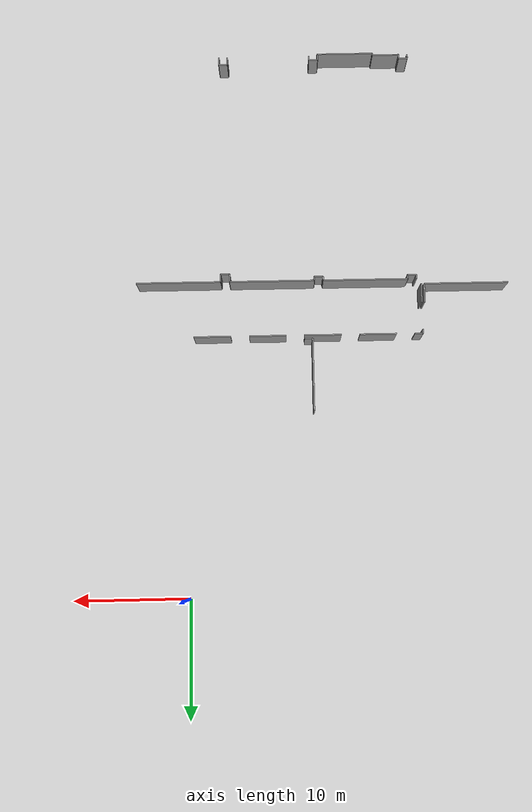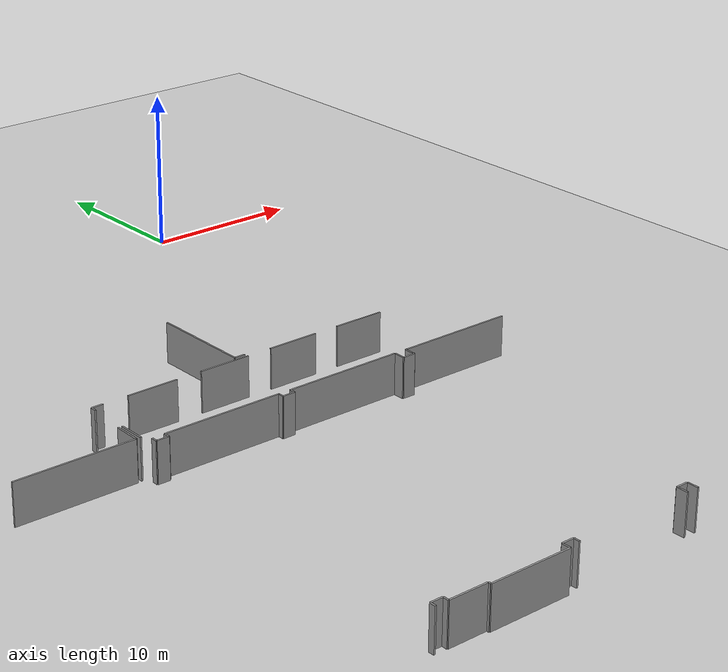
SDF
<sdf version="1.6">
 <world name="default">
  <model name="ground_plane">
   <static>1</static>
   <link name="link">
    <collision name="collision">
     <geometry><plane><normal>0 0 1</normal><size>100 100</size></plane></geometry>
     <surface><friction><ode><mu>100</mu><mu2>50</mu2></ode></friction></surface>
    </collision>
    <visual name="visual">
     <cast_shadows>0</cast_shadows>
     <geometry><plane><normal>0 0 1</normal><size>100 100</size></plane></geometry>
     <material>
      <script><uri>file://media/materials/scripts/gazebo.material</uri><name>Gazebo/Grey</name></script>
     </material>
    </visual>
   </link>
  </model>
  <model name="50025631">
   <static>1</static>
   <link name="Wall_405">
    <collision name="Wall_405_Collision">
     <geometry><box><size>0.700945558921 0.1 2.5</size></box></geometry>
     <pose>0.350472779461 0 1.25 0 0 0</pose>
    </collision>
    <visual name="Wall_405_Visual">
     <pose>0.350472779461 0 1.25 0 0 0</pose>
     <geometry><box><size>0.700945558921 0.1 2.5</size></box></geometry>
     <material>
      <script><uri>file://media/materials/scripts/gazebo.material</uri><name>Gazebo/Grey</name></script>
      <ambient>1 1 1 1</ambient>
     </material>
    </visual>
    <pose>53.0224228915 -96.9353857487 0 0 0 1.57079632679</pose>
   </link>
   <link name="Wall_406">
    <collision name="Wall_406_Collision">
     <geometry><box><size>0.751366900993 0.1 2.5</size></box></geometry>
     <pose>0.375683450496 0 1.25 0 0 0</pose>
    </collision>
    <visual name="Wall_406_Visual">
     <pose>0.375683450496 0 1.25 0 0 0</pose>
     <geometry><box><size>0.751366900993 0.1 2.5</size></box></geometry>
     <material>
      <script><uri>file://media/materials/scripts/gazebo.material</uri><name>Gazebo/Grey</name></script>
      <ambient>1 1 1 1</ambient>
     </material>
    </visual>
    <pose>53.0224228915 -96.2344401897 0 0 0 3.14159265359</pose>
   </link>
   <link name="Wall_407">
    <collision name="Wall_407_Collision">
     <geometry><box><size>0.700945558921 0.1 2.5</size></box></geometry>
     <pose>0.350472779461 0 1.25 0 0 0</pose>
    </collision>
    <visual name="Wall_407_Visual">
     <pose>0.350472779461 0 1.25 0 0 0</pose>
     <geometry><box><size>0.700945558921 0.1 2.5</size></box></geometry>
     <material>
      <script><uri>file://media/materials/scripts/gazebo.material</uri><name>Gazebo/Grey</name></script>
      <ambient>1 1 1 1</ambient>
     </material>
    </visual>
    <pose>52.2710559906 -96.2344401897 0 0 0 -1.57079632679</pose>
   </link>
   <link name="Wall_408">
    <collision name="Wall_408_Collision">
     <geometry><box><size>0.375048420999 0.1 2.5</size></box></geometry>
     <pose>0.1875242105 0 1.25 0 0 0</pose>
    </collision>
    <visual name="Wall_408_Visual">
     <pose>0.1875242105 0 1.25 0 0 0</pose>
     <geometry><box><size>0.375048420999 0.1 2.5</size></box></geometry>
     <material>
      <script><uri>file://media/materials/scripts/gazebo.material</uri><name>Gazebo/Grey</name></script>
      <ambient>1 1 1 1</ambient>
     </material>
    </visual>
    <pose>44.816317718 -96.9353857487 0 0 0 1.57079632679</pose>
   </link>
   <link name="Wall_409">
    <collision name="Wall_409_Collision">
     <geometry><box><size>0.768766709214 0.1 2.5</size></box></geometry>
     <pose>0.384383354607 0 1.25 0 0 0</pose>
    </collision>
    <visual name="Wall_409_Visual">
     <pose>0.384383354607 0 1.25 0 0 0</pose>
     <geometry><box><size>0.768766709214 0.1 2.5</size></box></geometry>
     <material>
      <script><uri>file://media/materials/scripts/gazebo.material</uri><name>Gazebo/Grey</name></script>
      <ambient>1 1 1 1</ambient>
     </material>
    </visual>
    <pose>44.816317718 -96.5603373277 0 0 0 3.14159265359</pose>
   </link>
   <link name="Wall_410">
    <collision name="Wall_410_Collision">
     <geometry><box><size>0.539267048954 0.1 2.5</size></box></geometry>
     <pose>0.269633524477 0 1.25 0 0 0</pose>
    </collision>
    <visual name="Wall_410_Visual">
     <pose>0.269633524477 0 1.25 0 0 0</pose>
     <geometry><box><size>0.539267048954 0.1 2.5</size></box></geometry>
     <material>
      <script><uri>file://media/materials/scripts/gazebo.material</uri><name>Gazebo/Grey</name></script>
      <ambient>1 1 1 1</ambient>
     </material>
    </visual>
    <pose>44.0475510087 -96.5603373277 0 0 0 -1.57079632679</pose>
   </link>
   <link name="Wall_411">
    <collision name="Wall_411_Collision">
     <geometry><box><size>5.02143224553 0.1 2.5</size></box></geometry>
     <pose>2.51071612276 0 1.25 0 0 0</pose>
    </collision>
    <visual name="Wall_411_Visual">
     <pose>2.51071612276 0 1.25 0 0 0</pose>
     <geometry><box><size>5.02143224553 0.1 2.5</size></box></geometry>
     <material>
      <script><uri>file://media/materials/scripts/gazebo.material</uri><name>Gazebo/Grey</name></script>
      <ambient>1 1 1 1</ambient>
     </material>
    </visual>
    <pose>44.0475510087 -97.0996043766 0 0 0 3.14159265359</pose>
   </link>
   <link name="Wall_412">
    <collision name="Wall_412_Collision">
     <geometry><box><size>0.170187905228 0.1 2.5</size></box></geometry>
     <pose>0.0850939526141 0 1.25 0 0 0</pose>
    </collision>
    <visual name="Wall_412_Visual">
     <pose>0.0850939526141 0 1.25 0 0 0</pose>
     <geometry><box><size>0.170187905228 0.1 2.5</size></box></geometry>
     <material>
      <script><uri>file://media/materials/scripts/gazebo.material</uri><name>Gazebo/Grey</name></script>
      <ambient>1 1 1 1</ambient>
     </material>
    </visual>
    <pose>39.0261187632 -97.0996043766 0 0 0 1.57079632679</pose>
   </link>
   <link name="Wall_413">
    <collision name="Wall_413_Collision">
     <geometry><box><size>2.39456922774 0.1 2.5</size></box></geometry>
     <pose>1.19728461387 0 1.25 0 0 0</pose>
    </collision>
    <visual name="Wall_413_Visual">
     <pose>1.19728461387 0 1.25 0 0 0</pose>
     <geometry><box><size>2.39456922774 0.1 2.5</size></box></geometry>
     <material>
      <script><uri>file://media/materials/scripts/gazebo.material</uri><name>Gazebo/Grey</name></script>
      <ambient>1 1 1 1</ambient>
     </material>
    </visual>
    <pose>39.0261187632 -96.9294164714 0 0 0 3.14159265359</pose>
   </link>
   <link name="Wall_414">
    <collision name="Wall_414_Collision">
     <geometry><box><size>0.358283642275 0.1 2.5</size></box></geometry>
     <pose>0.179141821138 0 1.25 0 0 0</pose>
    </collision>
    <visual name="Wall_414_Visual">
     <pose>0.179141821138 0 1.25 0 0 0</pose>
     <geometry><box><size>0.358283642275 0.1 2.5</size></box></geometry>
     <material>
      <script><uri>file://media/materials/scripts/gazebo.material</uri><name>Gazebo/Grey</name></script>
      <ambient>1 1 1 1</ambient>
     </material>
    </visual>
    <pose>36.6315495355 -96.9294164714 0 0 0 1.57079632679</pose>
   </link>
   <link name="Wall_415">
    <collision name="Wall_415_Collision">
     <geometry><box><size>0.768131679717 0.1 2.5</size></box></geometry>
     <pose>0.384065839858 0 1.25 0 0 0</pose>
    </collision>
    <visual name="Wall_415_Visual">
     <pose>0.384065839858 0 1.25 0 0 0</pose>
     <geometry><box><size>0.768131679717 0.1 2.5</size></box></geometry>
     <material>
      <script><uri>file://media/materials/scripts/gazebo.material</uri><name>Gazebo/Grey</name></script>
      <ambient>1 1 1 1</ambient>
     </material>
    </visual>
    <pose>36.6315495355 -96.5711328291 0 0 0 3.14159265359</pose>
   </link>
   <link name="Wall_416">
    <collision name="Wall_416_Collision">
     <geometry><box><size>0.365268966743 0.1 2.5</size></box></geometry>
     <pose>0.182634483372 0 1.25 0 0 0</pose>
    </collision>
    <visual name="Wall_416_Visual">
     <pose>0.182634483372 0 1.25 0 0 0</pose>
     <geometry><box><size>0.365268966743 0.1 2.5</size></box></geometry>
     <material>
      <script><uri>file://media/materials/scripts/gazebo.material</uri><name>Gazebo/Grey</name></script>
      <ambient>1 1 1 1</ambient>
     </material>
    </visual>
    <pose>35.8634178558 -96.5711328291 0 0 0 -1.57079632679</pose>
   </link>
   <link name="Wall_447">
    <collision name="Wall_447_Collision">
     <geometry><box><size>0.369333155525 0.1 2.5</size></box></geometry>
     <pose>0.184666577763 0 1.25 0 0 0</pose>
    </collision>
    <visual name="Wall_447_Visual">
     <pose>0.184666577763 0 1.25 0 0 0</pose>
     <geometry><box><size>0.369333155525 0.1 2.5</size></box></geometry>
     <material>
      <script><uri>file://media/materials/scripts/gazebo.material</uri><name>Gazebo/Grey</name></script>
      <ambient>1 1 1 1</ambient>
     </material>
    </visual>
    <pose>35.8469070888 -75.7828072114 0 0 0 -1.57079632679</pose>
   </link>
   <link name="Wall_448">
    <collision name="Wall_448_Collision">
     <geometry><box><size>0.768766709214 0.1 2.5</size></box></geometry>
     <pose>0.384383354607 0 1.25 0 0 0</pose>
    </collision>
    <visual name="Wall_448_Visual">
     <pose>0.384383354607 0 1.25 0 0 0</pose>
     <geometry><box><size>0.768766709214 0.1 2.5</size></box></geometry>
     <material>
      <script><uri>file://media/materials/scripts/gazebo.material</uri><name>Gazebo/Grey</name></script>
      <ambient>1 1 1 1</ambient>
     </material>
    </visual>
    <pose>35.8469070888 -76.1521403669 0 0 0 0.0</pose>
   </link>
   <link name="Wall_449">
    <collision name="Wall_449_Collision">
     <geometry><box><size>0.373397344307 0.1 2.5</size></box></geometry>
     <pose>0.186698672153 0 1.25 0 0 0</pose>
    </collision>
    <visual name="Wall_449_Visual">
     <pose>0.186698672153 0 1.25 0 0 0</pose>
     <geometry><box><size>0.373397344307 0.1 2.5</size></box></geometry>
     <material>
      <script><uri>file://media/materials/scripts/gazebo.material</uri><name>Gazebo/Grey</name></script>
      <ambient>1 1 1 1</ambient>
     </material>
    </visual>
    <pose>36.615673798 -76.1521403669 0 0 0 1.57079632679</pose>
   </link>
   <link name="Wall_450">
    <collision name="Wall_450_Collision">
     <geometry><box><size>7.41282632578 0.1 2.5</size></box></geometry>
     <pose>3.70641316289 0 1.25 0 0 0</pose>
    </collision>
    <visual name="Wall_450_Visual">
     <pose>3.70641316289 0 1.25 0 0 0</pose>
     <geometry><box><size>7.41282632578 0.1 2.5</size></box></geometry>
     <material>
      <script><uri>file://media/materials/scripts/gazebo.material</uri><name>Gazebo/Grey</name></script>
      <ambient>1 1 1 1</ambient>
     </material>
    </visual>
    <pose>36.615673798 -75.7787430226 0 0 0 0.0</pose>
   </link>
   <link name="Wall_451">
    <collision name="Wall_451_Collision">
     <geometry><box><size>0.360442742565 0.1 2.5</size></box></geometry>
     <pose>0.180221371283 0 1.25 0 0 0</pose>
    </collision>
    <visual name="Wall_451_Visual">
     <pose>0.180221371283 0 1.25 0 0 0</pose>
     <geometry><box><size>0.360442742565 0.1 2.5</size></box></geometry>
     <material>
      <script><uri>file://media/materials/scripts/gazebo.material</uri><name>Gazebo/Grey</name></script>
      <ambient>1 1 1 1</ambient>
     </material>
    </visual>
    <pose>44.0285001238 -75.7787430226 0 0 0 -1.57079632679</pose>
   </link>
   <link name="Wall_452">
    <collision name="Wall_452_Collision">
     <geometry><box><size>0.782991369949 0.1 2.5</size></box></geometry>
     <pose>0.391495684975 0 1.25 0 0 0</pose>
    </collision>
    <visual name="Wall_452_Visual">
     <pose>0.391495684975 0 1.25 0 0 0</pose>
     <geometry><box><size>0.782991369949 0.1 2.5</size></box></geometry>
     <material>
      <script><uri>file://media/materials/scripts/gazebo.material</uri><name>Gazebo/Grey</name></script>
      <ambient>1 1 1 1</ambient>
     </material>
    </visual>
    <pose>44.0285001238 -76.1391857652 0 0 0 0.0</pose>
   </link>
   <link name="Wall_453">
    <collision name="Wall_453_Collision">
     <geometry><box><size>0.358029630476 0.1 2.5</size></box></geometry>
     <pose>0.179014815238 0 1.25 0 0 0</pose>
    </collision>
    <visual name="Wall_453_Visual">
     <pose>0.179014815238 0 1.25 0 0 0</pose>
     <geometry><box><size>0.358029630476 0.1 2.5</size></box></geometry>
     <material>
      <script><uri>file://media/materials/scripts/gazebo.material</uri><name>Gazebo/Grey</name></script>
      <ambient>1 1 1 1</ambient>
     </material>
    </visual>
    <pose>44.8114914938 -76.1391857652 0 0 0 1.57079632679</pose>
   </link>
   <link name="Wall_454">
    <collision name="Wall_454_Collision">
     <geometry><box><size>7.42006566205 0.1 2.5</size></box></geometry>
     <pose>3.71003283102 0 1.25 0 0 0</pose>
    </collision>
    <visual name="Wall_454_Visual">
     <pose>3.71003283102 0 1.25 0 0 0</pose>
     <geometry><box><size>7.42006566205 0.1 2.5</size></box></geometry>
     <material>
      <script><uri>file://media/materials/scripts/gazebo.material</uri><name>Gazebo/Grey</name></script>
      <ambient>1 1 1 1</ambient>
     </material>
    </visual>
    <pose>44.8114914938 -75.7811561347 0 0 0 0.0</pose>
   </link>
   <link name="Wall_455">
    <collision name="Wall_455_Collision">
     <geometry><box><size>0.711360042674 0.1 2.5</size></box></geometry>
     <pose>0.355680021337 0 1.25 0 0 0</pose>
    </collision>
    <visual name="Wall_455_Visual">
     <pose>0.355680021337 0 1.25 0 0 0</pose>
     <geometry><box><size>0.711360042674 0.1 2.5</size></box></geometry>
     <material>
      <script><uri>file://media/materials/scripts/gazebo.material</uri><name>Gazebo/Grey</name></script>
      <ambient>1 1 1 1</ambient>
     </material>
    </visual>
    <pose>52.2315571558 -75.7811561347 0 0 0 -1.57079632679</pose>
   </link>
   <link name="Wall_456">
    <collision name="Wall_456_Collision">
     <geometry><box><size>0.790611723915 0.1 2.5</size></box></geometry>
     <pose>0.395305861957 0 1.25 0 0 0</pose>
    </collision>
    <visual name="Wall_456_Visual">
     <pose>0.395305861957 0 1.25 0 0 0</pose>
     <geometry><box><size>0.790611723915 0.1 2.5</size></box></geometry>
     <material>
      <script><uri>file://media/materials/scripts/gazebo.material</uri><name>Gazebo/Grey</name></script>
      <ambient>1 1 1 1</ambient>
     </material>
    </visual>
    <pose>52.2315571558 -76.4925161774 0 0 0 0.0</pose>
   </link>
   <link name="Wall_457">
    <collision name="Wall_457_Collision">
     <geometry><box><size>0.708311901088 0.1 2.5</size></box></geometry>
     <pose>0.354155950544 0 1.25 0 0 0</pose>
    </collision>
    <visual name="Wall_457_Visual">
     <pose>0.354155950544 0 1.25 0 0 0</pose>
     <geometry><box><size>0.708311901088 0.1 2.5</size></box></geometry>
     <material>
      <script><uri>file://media/materials/scripts/gazebo.material</uri><name>Gazebo/Grey</name></script>
      <ambient>1 1 1 1</ambient>
     </material>
    </visual>
    <pose>53.0221688797 -76.4925161774 0 0 0 1.57079632679</pose>
   </link>
   <link name="Wall_458">
    <collision name="Wall_458_Collision">
     <geometry><box><size>7.40711106031 0.1 2.5</size></box></geometry>
     <pose>3.70355553015 0 1.25 0 0 0</pose>
    </collision>
    <visual name="Wall_458_Visual">
     <pose>3.70355553015 0 1.25 0 0 0</pose>
     <geometry><box><size>7.40711106031 0.1 2.5</size></box></geometry>
     <material>
      <script><uri>file://media/materials/scripts/gazebo.material</uri><name>Gazebo/Grey</name></script>
      <ambient>1 1 1 1</ambient>
     </material>
    </visual>
    <pose>53.0221688797 -75.7842042763 0 0 0 0.0</pose>
   </link>
   <link name="Wall_492">
    <collision name="Wall_492_Collision">
     <geometry><box><size>1.67101661872 0.1 2.5</size></box></geometry>
     <pose>0.835508309361 0 1.25 0 0 0</pose>
    </collision>
    <visual name="Wall_492_Visual">
     <pose>0.835508309361 0 1.25 0 0 0</pose>
     <geometry><box><size>1.67101661872 0.1 2.5</size></box></geometry>
     <material>
      <script><uri>file://media/materials/scripts/gazebo.material</uri><name>Gazebo/Grey</name></script>
      <ambient>1 1 1 1</ambient>
     </material>
    </visual>
    <pose>35.4583960425 -75.3484470354 0 0 0 1.57079632679</pose>
   </link>
   <link name="Wall_493">
    <collision name="Wall_493_Collision">
     <geometry><box><size>0.361458789761 0.1 2.5</size></box></geometry>
     <pose>0.18072939488 0 1.25 0 0 0</pose>
    </collision>
    <visual name="Wall_493_Visual">
     <pose>0.18072939488 0 1.25 0 0 0</pose>
     <geometry><box><size>0.361458789761 0.1 2.5</size></box></geometry>
     <material>
      <script><uri>file://media/materials/scripts/gazebo.material</uri><name>Gazebo/Grey</name></script>
      <ambient>1 1 1 1</ambient>
     </material>
    </visual>
    <pose>35.4583960425 -71.2429813365 0 0 0 1.57079632679</pose>
   </link>
   <link name="Wall_494">
    <collision name="Wall_494_Collision">
     <geometry><box><size>0.718599378941 0.1 2.5</size></box></geometry>
     <pose>0.359299689471 0 1.25 0 0 0</pose>
    </collision>
    <visual name="Wall_494_Visual">
     <pose>0.359299689471 0 1.25 0 0 0</pose>
     <geometry><box><size>0.718599378941 0.1 2.5</size></box></geometry>
     <material>
      <script><uri>file://media/materials/scripts/gazebo.material</uri><name>Gazebo/Grey</name></script>
      <ambient>1 1 1 1</ambient>
     </material>
    </visual>
    <pose>35.4583960425 -70.8815225467 0 0 0 0.0</pose>
   </link>
   <link name="Wall_495">
    <collision name="Wall_495_Collision">
     <geometry><box><size>3.19203927022 0.1 2.5</size></box></geometry>
     <pose>1.59601963511 0 1.25 0 0 0</pose>
    </collision>
    <visual name="Wall_495_Visual">
     <pose>1.59601963511 0 1.25 0 0 0</pose>
     <geometry><box><size>3.19203927022 0.1 2.5</size></box></geometry>
     <material>
      <script><uri>file://media/materials/scripts/gazebo.material</uri><name>Gazebo/Grey</name></script>
      <ambient>1 1 1 1</ambient>
     </material>
    </visual>
    <pose>37.769903412 -70.8815225467 0 0 0 0.0</pose>
   </link>
   <link name="Wall_496">
    <collision name="Wall_496_Collision">
     <geometry><box><size>3.21680542061 0.1 2.5</size></box></geometry>
     <pose>1.60840271031 0 1.25 0 0 0</pose>
    </collision>
    <visual name="Wall_496_Visual">
     <pose>1.60840271031 0 1.25 0 0 0</pose>
     <geometry><box><size>3.21680542061 0.1 2.5</size></box></geometry>
     <material>
      <script><uri>file://media/materials/scripts/gazebo.material</uri><name>Gazebo/Grey</name></script>
      <ambient>1 1 1 1</ambient>
     </material>
    </visual>
    <pose>42.5629790504 -70.8815225467 0 0 0 0.0</pose>
   </link>
   <link name="Wall_497">
    <collision name="Wall_497_Collision">
     <geometry><box><size>3.21477332622 0.1 2.5</size></box></geometry>
     <pose>1.60738666311 0 1.25 0 0 0</pose>
    </collision>
    <visual name="Wall_497_Visual">
     <pose>1.60738666311 0 1.25 0 0 0</pose>
     <geometry><box><size>3.21477332622 0.1 2.5</size></box></geometry>
     <material>
      <script><uri>file://media/materials/scripts/gazebo.material</uri><name>Gazebo/Grey</name></script>
      <ambient>1 1 1 1</ambient>
     </material>
    </visual>
    <pose>47.3560546887 -70.8815225467 0 0 0 0.0</pose>
   </link>
   <link name="Wall_498">
    <collision name="Wall_498_Collision">
     <geometry><box><size>3.2190915268 0.1 2.5</size></box></geometry>
     <pose>1.6095457634 0 1.25 0 0 0</pose>
    </collision>
    <visual name="Wall_498_Visual">
     <pose>1.6095457634 0 1.25 0 0 0</pose>
     <geometry><box><size>3.2190915268 0.1 2.5</size></box></geometry>
     <material>
      <script><uri>file://media/materials/scripts/gazebo.material</uri><name>Gazebo/Grey</name></script>
      <ambient>1 1 1 1</ambient>
     </material>
    </visual>
    <pose>52.1712293536 -70.8815225467 0 0 0 0.0</pose>
   </link>
   <link name="Wall_534">
    <collision name="Wall_534_Collision">
     <geometry><box><size>0.700945558921 0.1 2.5</size></box></geometry>
     <pose>0.350472779461 0 1.25 0 0 0</pose>
    </collision>
    <visual name="Wall_534_Visual">
     <pose>0.350472779461 0 1.25 0 0 0</pose>
     <geometry><box><size>0.700945558921 0.1 2.5</size></box></geometry>
     <material>
      <script><uri>file://media/materials/scripts/gazebo.material</uri><name>Gazebo/Grey</name></script>
      <ambient>1 1 1 1</ambient>
     </material>
    </visual>
    <pose>45.7672108869 -70.6092218984 0 0 0 3.14159265359</pose>
   </link>
   <link name="Wall_535">
    <collision name="Wall_535_Collision">
     <geometry><box><size>6.33365719838 0.1 2.5</size></box></geometry>
     <pose>3.16682859919 0 1.25 0 0 0</pose>
    </collision>
    <visual name="Wall_535_Visual">
     <pose>3.16682859919 0 1.25 0 0 0</pose>
     <geometry><box><size>6.33365719838 0.1 2.5</size></box></geometry>
     <material>
      <script><uri>file://media/materials/scripts/gazebo.material</uri><name>Gazebo/Grey</name></script>
      <ambient>1 1 1 1</ambient>
     </material>
    </visual>
    <pose>45.066265328 -70.6092218984 0 0 0 1.57079632679</pose>
   </link>
   <link name="Wall_542">
    <collision name="Wall_542_Collision">
     <geometry><box><size>7.33713080973 0.1 2.5</size></box></geometry>
     <pose>3.66856540486 0 1.25 0 0 0</pose>
    </collision>
    <visual name="Wall_542_Visual">
     <pose>3.66856540486 0 1.25 0 0 0</pose>
     <geometry><box><size>7.33713080973 0.1 2.5</size></box></geometry>
     <material>
      <script><uri>file://media/materials/scripts/gazebo.material</uri><name>Gazebo/Grey</name></script>
      <ambient>1 1 1 1</ambient>
     </material>
    </visual>
    <pose>35.1798721051 -75.3292691446 0 0 0 3.14159265359</pose>
   </link>
   <link name="Wall_546">
    <collision name="Wall_546_Collision">
     <geometry><box><size>1.65897613451 0.1 2.5</size></box></geometry>
     <pose>0.829488067254 0 1.25 0 0 0</pose>
    </collision>
    <visual name="Wall_546_Visual">
     <pose>0.829488067254 0 1.25 0 0 0</pose>
     <geometry><box><size>1.65897613451 0.1 2.5</size></box></geometry>
     <material>
      <script><uri>file://media/materials/scripts/gazebo.material</uri><name>Gazebo/Grey</name></script>
      <ambient>1 1 1 1</ambient>
     </material>
    </visual>
    <pose>35.21657681 -73.670699104 0 0 0 -1.59292304664</pose>
   </link>
   <pose>-55.9 48.5496043766 0 0 0 0</pose>
  </model>
 </world>
</sdf>
